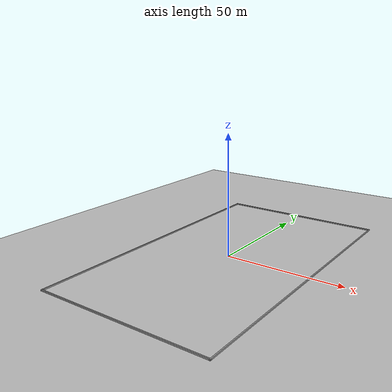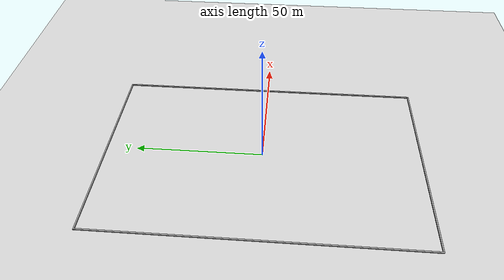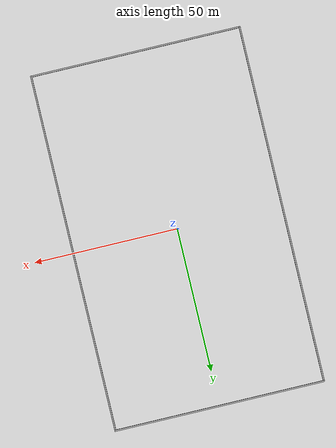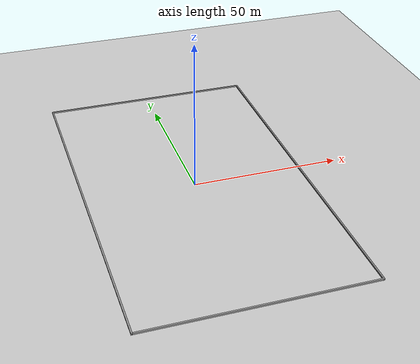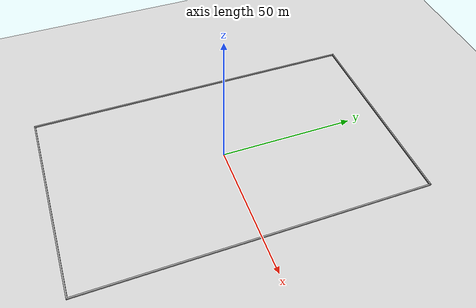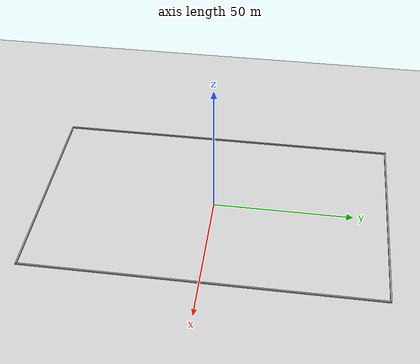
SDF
<sdf version='1.9'>
  <world name='default'>
    <physics type="ode">
      <max_step_size>0.004</max_step_size>
      <real_time_factor>1.0</real_time_factor>
      <real_time_update_rate>250</real_time_update_rate>
    </physics>
    <plugin name='gz::sim::systems::Physics' filename='gz-sim-physics-system'/>
    <plugin name='gz::sim::systems::UserCommands' filename='gz-sim-user-commands-system'/>
    <plugin name='gz::sim::systems::SceneBroadcaster' filename='gz-sim-scene-broadcaster-system'/>
    <plugin name='gz::sim::systems::Contact' filename='gz-sim-contact-system'/>
    <plugin name='gz::sim::systems::Imu' filename='gz-sim-imu-system'/>
    <plugin name='gz::sim::systems::AirPressure' filename='gz-sim-air-pressure-system'/>
    <plugin name='gz::sim::systems::ApplyLinkWrench' filename='gz-sim-apply-link-wrench-system'/>
    <plugin name='gz::sim::systems::Sensors' filename='gz-sim-sensors-system'>
      <render_engine>ogre2</render_engine>
    </plugin>
    <gui fullscreen='false'>
      <plugin name='3D View' filename='GzScene3D'>
        <gz-gui>
          <title>3D View</title>
          <property type='bool' key='showTitleBar'>0</property>
          <property type='string' key='state'>docked</property>
        </gz-gui>
        <engine>ogre2</engine>
        <scene>scene</scene>
        <ambient_light>0.5984631152222222 0.5984631152222222 0.5984631152222222</ambient_light>
        <background_color>0.8984631152222222 0.8984631152222222 0.8984631152222222</background_color>
        <camera_pose>-6 0 6 0 0.5 0</camera_pose>
      </plugin>
      <plugin name='World control' filename='WorldControl'>
        <gz-gui>
          <title>World control</title>
          <property type='bool' key='showTitleBar'>0</property>
          <property type='bool' key='resizable'>0</property>
          <property type='double' key='height'>72</property>
          <property type='double' key='width'>121</property>
          <property type='double' key='z'>1</property>
          <property type='string' key='state'>floating</property>
          <anchors target='3D View'>
            <line own='left' target='left'/>
            <line own='bottom' target='bottom'/>
          </anchors>
        </gz-gui>
        <play_pause>1</play_pause>
        <step>1</step>
        <start_paused>1</start_paused>
      </plugin>
      <plugin name='World stats' filename='WorldStats'>
        <gz-gui>
          <title>World stats</title>
          <property type='bool' key='showTitleBar'>0</property>
          <property type='bool' key='resizable'>0</property>
          <property type='double' key='height'>110</property>
          <property type='double' key='width'>290</property>
          <property type='double' key='z'>1</property>
          <property type='string' key='state'>floating</property>
          <anchors target='3D View'>
            <line own='right' target='right'/>
            <line own='bottom' target='bottom'/>
          </anchors>
        </gz-gui>
        <sim_time>1</sim_time>
        <real_time>1</real_time>
        <real_time_factor>1</real_time_factor>
        <iterations>1</iterations>
      </plugin>
      <plugin name='Entity tree' filename='EntityTree'/>
    </gui>
    <gravity>0 0 -9.8</gravity>
    <magnetic_field>6e-06 2.3e-05 -4.2e-05</magnetic_field>
    <atmosphere type='adiabatic'/>
    <scene>
      <grid>false</grid>
      <ambient>0.4 0.4 0.4 1</ambient>
      <background>0.7 0.7 0.7 1</background>
      <shadows>true</shadows>
    </scene>
    <model name='ground_plane'>
      <static>true</static>
      <link name='link'>
        <collision name='collision'>
          <geometry>
            <plane>
              <normal>0 0 1</normal>
              <size>1 1</size>
            </plane>
          </geometry>
          <surface>
            <friction>
              <ode/>
            </friction>
            <bounce/>
            <contact/>
          </surface>
        </collision>
        <visual name='visual'>
          <geometry>
            <plane>
              <normal>0 0 1</normal>
              <size>73 124</size>
            </plane>
          </geometry>
          <material>
            <ambient>0.8 0.8 0.8 1</ambient>
            <diffuse>0.8 0.8 0.8 1</diffuse>
            <specular>0.8 0.8 0.8 1</specular>
          </material>
        </visual>
        <pose>0 0 0 0 -0 0</pose>
        <inertial>
          <pose>0 0 0 0 -0 0</pose>
          <mass>1</mass>
          <inertia>
            <ixx>1</ixx>
            <ixy>0</ixy>
            <ixz>0</ixz>
            <iyy>1</iyy>
            <iyz>0</iyz>
            <izz>1</izz>
          </inertia>
        </inertial>
        <enable_wind>false</enable_wind>
      </link>
      <pose>0 0 0 0 -0 0</pose>
      <self_collide>false</self_collide>
    </model>
    <model name='Swarmz3map'>
        <pose>0 0 0 0 -0 0</pose>
        <link name='Wall_11'>
          <collision name='Wall_11_Collision'>
            <geometry>
              <box>
                <size>73.5 0.5 0.5</size>
              </box>
            </geometry>
            <pose>0 0 0.25 0 -0 0</pose>
          </collision>
          <visual name='Wall_11_Visual'>
            <pose>0 0 0.25 0 -0 0</pose>
            <geometry>
              <box>
                <size>73.5 0.5 0.5</size>
              </box>
            </geometry>
            <material>
              <script>
                <uri>file://media/materials/scripts/gazebo.material</uri>
                <name>Gazebo/Grey</name>
              </script>
              <ambient>1 1 1 1</ambient>
            </material>
            <meta>
              <layer>0</layer>
            </meta>
          </visual>
          <pose>0 62 0 0 -0 0</pose>
        </link>
        <link name='Wall_5'>
          <collision name='Wall_5_Collision'>
            <geometry>
              <box>
                <size>124.5 0.5 0.5</size>
              </box>
            </geometry>
            <pose>0 0 0.25 0 -0 0</pose>
          </collision>
          <visual name='Wall_5_Visual'>
            <pose>0 0 0.25 0 -0 0</pose>
            <geometry>
              <box>
                <size>124.5 0.5 0.5</size>
              </box>
            </geometry>
            <material>
              <script>
                <uri>file://media/materials/scripts/gazebo.material</uri>
                <name>Gazebo/Grey</name>
              </script>
              <ambient>1 1 1 1</ambient>
            </material>
            <meta>
              <layer>0</layer>
            </meta>
          </visual>
          <pose>36.5 0 0 0 -0 -1.5708</pose>
        </link>
        <link name='Wall_7'>
          <collision name='Wall_7_Collision'>
            <geometry>
              <box>
                <size>124.5 0.5 0.5</size>
              </box>
            </geometry>
            <pose>0 0 0.25 0 -0 0</pose>
          </collision>
          <visual name='Wall_7_Visual'>
            <pose>0 0 0.25 0 -0 0</pose>
            <geometry>
              <box>
                <size>124.5 0.5 0.5</size>
              </box>
            </geometry>
            <material>
              <script>
                <uri>file://media/materials/scripts/gazebo.material</uri>
                <name>Gazebo/Grey</name>
              </script>
              <ambient>1 1 1 1</ambient>
            </material>
            <meta>
              <layer>0</layer>
            </meta>
          </visual>
          <pose>-36.5 0 0 0 -0 -1.5708</pose>
        </link>
        <link name='Wall_9'>
          <collision name='Wall_9_Collision'>
            <geometry>
              <box>
                <size>73.5 0.5 0.5</size>
              </box>
            </geometry>
            <pose>0 0 0.25 0 -0 0</pose>
          </collision>
          <visual name='Wall_9_Visual'>
            <pose>0 0 0.25 0 -0 0</pose>
            <geometry>
              <box>
                <size>73.5 0.5 0.5</size>
              </box>
            </geometry>
            <material>
              <script>
                <uri>file://media/materials/scripts/gazebo.material</uri>
                <name>Gazebo/Grey</name>
              </script>
              <ambient>1 1 1 1</ambient>
            </material>
            <meta>
              <layer>0</layer>
            </meta>
          </visual>
          <pose>0 -62 0 0 -0 0</pose>
        </link>
        <static>1</static>
      </model>
    <light name='sunUTC' type='directional'>
      <pose>0 0 500 0 -0 0</pose>
      <cast_shadows>true</cast_shadows>
      <intensity>1</intensity>
      <direction>0.001 0.625 -0.78</direction>
      <diffuse>0.904 0.904 0.904 1</diffuse>
      <specular>0.271 0.271 0.271 1</specular>
      <attenuation>
        <range>2000</range>
        <linear>0</linear>
        <constant>1</constant>
        <quadratic>0</quadratic>
      </attenuation>
      <spot>
        <inner_angle>0</inner_angle>
        <outer_angle>0</outer_angle>
        <falloff>0</falloff>
      </spot>
    </light>
  </world>
</sdf>
